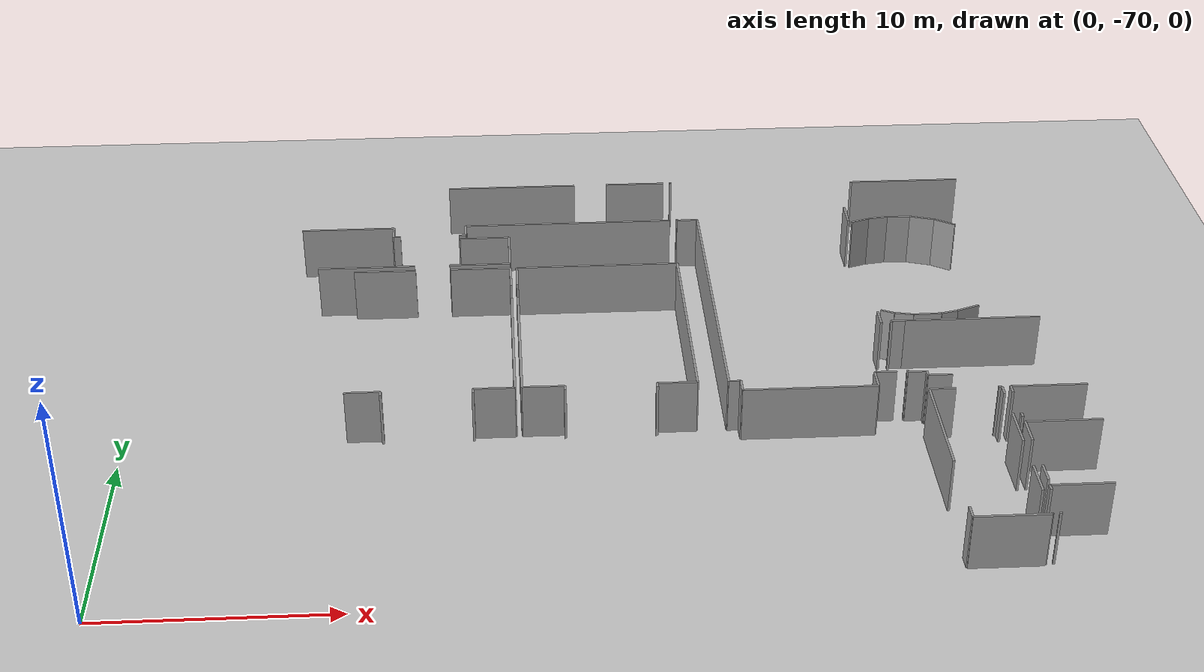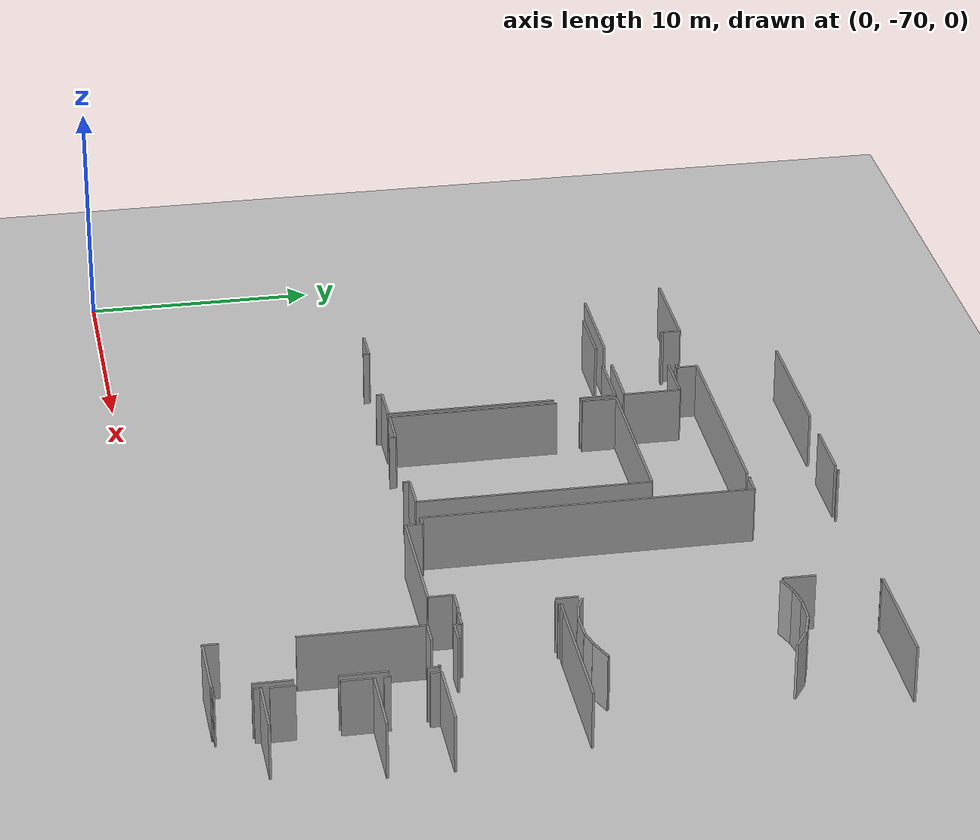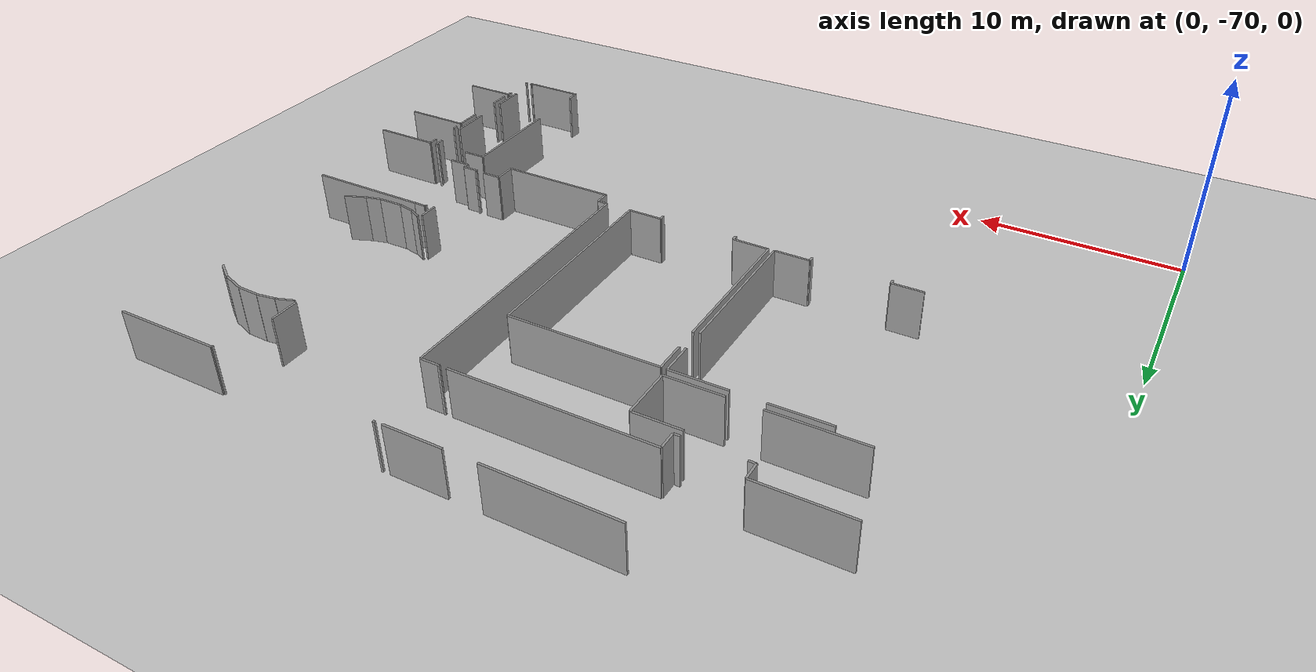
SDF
<sdf version="1.6">
 <world name="default">
  <model name="ground_plane">
   <static>1</static>
   <link name="link">
    <collision name="collision">
     <geometry><plane><normal>0 0 1</normal><size>100 100</size></plane></geometry>
     <surface><friction><ode><mu>100</mu><mu2>50</mu2></ode></friction></surface>
    </collision>
    <visual name="visual">
     <cast_shadows>0</cast_shadows>
     <geometry><plane><normal>0 0 1</normal><size>100 100</size></plane></geometry>
     <material>
      <script><uri>file://media/materials/scripts/gazebo.material</uri><name>Gazebo/Grey</name></script>
     </material>
    </visual>
   </link>
  </model>
  <model name="0510035520_A_40_1_103">
   <static>1</static>
   <link name="Wall_675">
    <collision name="Wall_675_Collision">
     <geometry><box><size>7.34893814126 0.1 2.5</size></box></geometry>
     <pose>3.67446907063 0 1.25 0 0 0</pose>
    </collision>
    <visual name="Wall_675_Visual">
     <pose>3.67446907063 0 1.25 0 0 0</pose>
     <geometry><box><size>7.34893814126 0.1 2.5</size></box></geometry>
     <material>
      <script><uri>file://media/materials/scripts/gazebo.material</uri><name>Gazebo/Grey</name></script>
      <ambient>1 1 1 1</ambient>
     </material>
    </visual>
    <pose>129.103749342 -127.203507592 0 0 0 1.57079632679</pose>
   </link>
   <link name="Wall_676">
    <collision name="Wall_676_Collision">
     <geometry><box><size>1.51826447802 0.1 2.5</size></box></geometry>
     <pose>0.759132239009 0 1.25 0 0 0</pose>
    </collision>
    <visual name="Wall_676_Visual">
     <pose>0.759132239009 0 1.25 0 0 0</pose>
     <geometry><box><size>1.51826447802 0.1 2.5</size></box></geometry>
     <material>
      <script><uri>file://media/materials/scripts/gazebo.material</uri><name>Gazebo/Grey</name></script>
      <ambient>1 1 1 1</ambient>
     </material>
    </visual>
    <pose>129.103749342 -118.729449686 0 0 0 1.57079632679</pose>
   </link>
   <link name="Wall_677">
    <collision name="Wall_677_Collision">
     <geometry><box><size>7.40959765484 0.1 2.5</size></box></geometry>
     <pose>3.70479882742 0 1.25 0 0 0</pose>
    </collision>
    <visual name="Wall_677_Visual">
     <pose>3.70479882742 0 1.25 0 0 0</pose>
     <geometry><box><size>7.40959765484 0.1 2.5</size></box></geometry>
     <material>
      <script><uri>file://media/materials/scripts/gazebo.material</uri><name>Gazebo/Grey</name></script>
      <ambient>1 1 1 1</ambient>
     </material>
    </visual>
    <pose>129.103749342 -117.211185208 0 0 0 0.0</pose>
   </link>
   <link name="Wall_678">
    <collision name="Wall_678_Collision">
     <geometry><box><size>10.008819741 0.1 2.5</size></box></geometry>
     <pose>5.0044098705 0 1.25 0 0 0</pose>
    </collision>
    <visual name="Wall_678_Visual">
     <pose>5.0044098705 0 1.25 0 0 0</pose>
     <geometry><box><size>10.008819741 0.1 2.5</size></box></geometry>
     <material>
      <script><uri>file://media/materials/scripts/gazebo.material</uri><name>Gazebo/Grey</name></script>
      <ambient>1 1 1 1</ambient>
     </material>
    </visual>
    <pose>136.513346997 -117.211185208 0 0 0 -1.57079632679</pose>
   </link>
   <link name="Wall_679">
    <collision name="Wall_679_Collision">
     <geometry><box><size>1.70963382212 0.1 2.5</size></box></geometry>
     <pose>0.85481691106 0 1.25 0 0 0</pose>
    </collision>
    <visual name="Wall_679_Visual">
     <pose>0.85481691106 0 1.25 0 0 0</pose>
     <geometry><box><size>1.70963382212 0.1 2.5</size></box></geometry>
     <material>
      <script><uri>file://media/materials/scripts/gazebo.material</uri><name>Gazebo/Grey</name></script>
      <ambient>1 1 1 1</ambient>
     </material>
    </visual>
    <pose>136.513346997 -127.220004949 0 0 0 3.14159265359</pose>
   </link>
   <link name="Wall_680">
    <collision name="Wall_680_Collision">
     <geometry><box><size>0.282231711728 0.1 2.5</size></box></geometry>
     <pose>0.141115855864 0 1.25 0 0 0</pose>
    </collision>
    <visual name="Wall_680_Visual">
     <pose>0.141115855864 0 1.25 0 0 0</pose>
     <geometry><box><size>0.282231711728 0.1 2.5</size></box></geometry>
     <material>
      <script><uri>file://media/materials/scripts/gazebo.material</uri><name>Gazebo/Grey</name></script>
      <ambient>1 1 1 1</ambient>
     </material>
    </visual>
    <pose>134.803713174 -127.220004949 0 0 0 -1.57079632679</pose>
   </link>
   <link name="Wall_681">
    <collision name="Wall_681_Collision">
     <geometry><box><size>0.284515961193 0.1 2.5</size></box></geometry>
     <pose>0.142257980597 0 1.25 0 0 0</pose>
    </collision>
    <visual name="Wall_681_Visual">
     <pose>0.142257980597 0 1.25 0 0 0</pose>
     <geometry><box><size>0.284515961193 0.1 2.5</size></box></geometry>
     <material>
      <script><uri>file://media/materials/scripts/gazebo.material</uri><name>Gazebo/Grey</name></script>
      <ambient>1 1 1 1</ambient>
     </material>
    </visual>
    <pose>130.919981472 -127.502236661 0 0 0 1.57079632679</pose>
   </link>
   <link name="Wall_682">
    <collision name="Wall_682_Collision">
     <geometry><box><size>1.81628774271 0.1 2.5</size></box></geometry>
     <pose>0.908143871355 0 1.25 0 0 0</pose>
    </collision>
    <visual name="Wall_682_Visual">
     <pose>0.908143871355 0 1.25 0 0 0</pose>
     <geometry><box><size>1.81628774271 0.1 2.5</size></box></geometry>
     <material>
      <script><uri>file://media/materials/scripts/gazebo.material</uri><name>Gazebo/Grey</name></script>
      <ambient>1 1 1 1</ambient>
     </material>
    </visual>
    <pose>130.919981472 -127.2177207 0 0 0 3.13376721244</pose>
   </link>
   <link name="Wall_684">
    <collision name="Wall_684_Collision">
     <geometry><box><size>2.8210480898 0.1 2.5</size></box></geometry>
     <pose>1.4105240449 0 1.25 0 0 0</pose>
    </collision>
    <visual name="Wall_684_Visual">
     <pose>1.4105240449 0 1.25 0 0 0</pose>
     <geometry><box><size>2.8210480898 0.1 2.5</size></box></geometry>
     <material>
      <script><uri>file://media/materials/scripts/gazebo.material</uri><name>Gazebo/Grey</name></script>
      <ambient>1 1 1 1</ambient>
     </material>
    </visual>
    <pose>121.647451476 -117.206616709 0 0 0 0.0</pose>
   </link>
   <link name="Wall_685">
    <collision name="Wall_685_Collision">
     <geometry><box><size>2.7550586608 0.1 2.5</size></box></geometry>
     <pose>1.3775293304 0 1.25 0 0 0</pose>
    </collision>
    <visual name="Wall_685_Visual">
     <pose>1.3775293304 0 1.25 0 0 0</pose>
     <geometry><box><size>2.7550586608 0.1 2.5</size></box></geometry>
     <material>
      <script><uri>file://media/materials/scripts/gazebo.material</uri><name>Gazebo/Grey</name></script>
      <ambient>1 1 1 1</ambient>
     </material>
    </visual>
    <pose>126.060113832 -117.206616709 0 0 0 0.0</pose>
   </link>
   <link name="Wall_686">
    <collision name="Wall_686_Collision">
     <geometry><box><size>1.5791777971 0.1 2.5</size></box></geometry>
     <pose>0.789588898548 0 1.25 0 0 0</pose>
    </collision>
    <visual name="Wall_686_Visual">
     <pose>0.789588898548 0 1.25 0 0 0</pose>
     <geometry><box><size>1.5791777971 0.1 2.5</size></box></geometry>
     <material>
      <script><uri>file://media/materials/scripts/gazebo.material</uri><name>Gazebo/Grey</name></script>
      <ambient>1 1 1 1</ambient>
     </material>
    </visual>
    <pose>128.815172493 -117.206616709 0 0 0 -1.57079632679</pose>
   </link>
   <link name="Wall_687">
    <collision name="Wall_687_Collision">
     <geometry><box><size>7.28421773974 0.1 2.5</size></box></geometry>
     <pose>3.64210886987 0 1.25 0 0 0</pose>
    </collision>
    <visual name="Wall_687_Visual">
     <pose>3.64210886987 0 1.25 0 0 0</pose>
     <geometry><box><size>7.28421773974 0.1 2.5</size></box></geometry>
     <material>
      <script><uri>file://media/materials/scripts/gazebo.material</uri><name>Gazebo/Grey</name></script>
      <ambient>1 1 1 1</ambient>
     </material>
    </visual>
    <pose>128.815172493 -119.935787209 0 0 0 -1.57079632679</pose>
   </link>
   <link name="Wall_688">
    <collision name="Wall_688_Collision">
     <geometry><box><size>1.76927811372 0.1 2.5</size></box></geometry>
     <pose>0.884639056859 0 1.25 0 0 0</pose>
    </collision>
    <visual name="Wall_688_Visual">
     <pose>0.884639056859 0 1.25 0 0 0</pose>
     <geometry><box><size>1.76927811372 0.1 2.5</size></box></geometry>
     <material>
      <script><uri>file://media/materials/scripts/gazebo.material</uri><name>Gazebo/Grey</name></script>
      <ambient>1 1 1 1</ambient>
     </material>
    </visual>
    <pose>128.815172493 -127.220004949 0 0 0 3.14159265359</pose>
   </link>
   <link name="Wall_689">
    <collision name="Wall_689_Collision">
     <geometry><box><size>0.265480548981 0.1 2.5</size></box></geometry>
     <pose>0.132740274491 0 1.25 0 0 0</pose>
    </collision>
    <visual name="Wall_689_Visual">
     <pose>0.132740274491 0 1.25 0 0 0</pose>
     <geometry><box><size>0.265480548981 0.1 2.5</size></box></geometry>
     <material>
      <script><uri>file://media/materials/scripts/gazebo.material</uri><name>Gazebo/Grey</name></script>
      <ambient>1 1 1 1</ambient>
     </material>
    </visual>
    <pose>127.045894379 -127.220004949 0 0 0 -1.57079632679</pose>
   </link>
   <link name="Wall_690">
    <collision name="Wall_690_Collision">
     <geometry><box><size>0.257104967608 0.1 2.5</size></box></geometry>
     <pose>0.128552483804 0 1.25 0 0 0</pose>
    </collision>
    <visual name="Wall_690_Visual">
     <pose>0.128552483804 0 1.25 0 0 0</pose>
     <geometry><box><size>0.257104967608 0.1 2.5</size></box></geometry>
     <material>
      <script><uri>file://media/materials/scripts/gazebo.material</uri><name>Gazebo/Grey</name></script>
      <ambient>1 1 1 1</ambient>
     </material>
    </visual>
    <pose>123.187797032 -127.485485498 0 0 0 1.57079632679</pose>
   </link>
   <link name="Wall_691">
    <collision name="Wall_691_Collision">
     <geometry><box><size>1.54036079949 0.1 2.5</size></box></geometry>
     <pose>0.770180399746 0 1.25 0 0 0</pose>
    </collision>
    <visual name="Wall_691_Visual">
     <pose>0.770180399746 0 1.25 0 0 0</pose>
     <geometry><box><size>1.54036079949 0.1 2.5</size></box></geometry>
     <material>
      <script><uri>file://media/materials/scripts/gazebo.material</uri><name>Gazebo/Grey</name></script>
      <ambient>1 1 1 1</ambient>
     </material>
    </visual>
    <pose>123.187797032 -127.228380531 0 0 0 -3.13714384458</pose>
   </link>
   <link name="Wall_701">
    <collision name="Wall_701_Collision">
     <geometry><box><size>2.29820876771 0.1 2.5</size></box></geometry>
     <pose>1.14910438386 0 1.25 0 0 0</pose>
    </collision>
    <visual name="Wall_701_Visual">
     <pose>1.14910438386 0 1.25 0 0 0</pose>
     <geometry><box><size>2.29820876771 0.1 2.5</size></box></geometry>
     <material>
      <script><uri>file://media/materials/scripts/gazebo.material</uri><name>Gazebo/Grey</name></script>
      <ambient>1 1 1 1</ambient>
     </material>
    </visual>
    <pose>126.498435924 -114.326685744 0 0 0 0.0</pose>
   </link>
   <link name="Wall_702">
    <collision name="Wall_702_Collision">
     <geometry><box><size>2.47612642052 0.1 2.5</size></box></geometry>
     <pose>1.23806321026 0 1.25 0 0 0</pose>
    </collision>
    <visual name="Wall_702_Visual">
     <pose>1.23806321026 0 1.25 0 0 0</pose>
     <geometry><box><size>2.47612642052 0.1 2.5</size></box></geometry>
     <material>
      <script><uri>file://media/materials/scripts/gazebo.material</uri><name>Gazebo/Grey</name></script>
      <ambient>1 1 1 1</ambient>
     </material>
    </visual>
    <pose>128.796644691 -114.326685744 0 0 0 -1.57079632679</pose>
   </link>
   <link name="Wall_703">
    <collision name="Wall_703_Collision">
     <geometry><box><size>2.77688593346 0.1 2.5</size></box></geometry>
     <pose>1.38844296673 0 1.25 0 0 0</pose>
    </collision>
    <visual name="Wall_703_Visual">
     <pose>1.38844296673 0 1.25 0 0 0</pose>
     <geometry><box><size>2.77688593346 0.1 2.5</size></box></geometry>
     <material>
      <script><uri>file://media/materials/scripts/gazebo.material</uri><name>Gazebo/Grey</name></script>
      <ambient>1 1 1 1</ambient>
     </material>
    </visual>
    <pose>128.796644691 -116.802812165 0 0 0 3.14159265359</pose>
   </link>
   <link name="Wall_704">
    <collision name="Wall_704_Collision">
     <geometry><box><size>4.44007334979 0.1 2.5</size></box></geometry>
     <pose>2.22003667489 0 1.25 0 0 0</pose>
    </collision>
    <visual name="Wall_704_Visual">
     <pose>2.22003667489 0 1.25 0 0 0</pose>
     <geometry><box><size>4.44007334979 0.1 2.5</size></box></geometry>
     <material>
      <script><uri>file://media/materials/scripts/gazebo.material</uri><name>Gazebo/Grey</name></script>
      <ambient>1 1 1 1</ambient>
     </material>
    </visual>
    <pose>124.425352631 -116.802812165 0 0 0 3.14159265359</pose>
   </link>
   <link name="Wall_806">
    <collision name="Wall_806_Collision">
     <geometry><box><size>6.14894575542 0.1 2.5</size></box></geometry>
     <pose>3.07447287771 0 1.25 0 0 0</pose>
    </collision>
    <visual name="Wall_806_Visual">
     <pose>3.07447287771 0 1.25 0 0 0</pose>
     <geometry><box><size>6.14894575542 0.1 2.5</size></box></geometry>
     <material>
      <script><uri>file://media/materials/scripts/gazebo.material</uri><name>Gazebo/Grey</name></script>
      <ambient>1 1 1 1</ambient>
     </material>
    </visual>
    <pose>125.951231274 -109.299814087 0 0 0 0.0</pose>
   </link>
   <link name="Wall_807">
    <collision name="Wall_807_Collision">
     <geometry><box><size>2.82206331178 0.1 2.5</size></box></geometry>
     <pose>1.41103165589 0 1.25 0 0 0</pose>
    </collision>
    <visual name="Wall_807_Visual">
     <pose>1.41103165589 0 1.25 0 0 0</pose>
     <geometry><box><size>2.82206331178 0.1 2.5</size></box></geometry>
     <material>
      <script><uri>file://media/materials/scripts/gazebo.material</uri><name>Gazebo/Grey</name></script>
      <ambient>1 1 1 1</ambient>
     </material>
    </visual>
    <pose>133.681639076 -109.299814087 0 0 0 0.0</pose>
   </link>
   <link name="Wall_808">
    <collision name="Wall_808_Collision">
     <geometry><box><size>9.74816149644 0.1 2.5</size></box></geometry>
     <pose>4.87408074822 0 1.25 0 0 0</pose>
    </collision>
    <visual name="Wall_808_Visual">
     <pose>4.87408074822 0 1.25 0 0 0</pose>
     <geometry><box><size>9.74816149644 0.1 2.5</size></box></geometry>
     <material>
      <script><uri>file://media/materials/scripts/gazebo.material</uri><name>Gazebo/Grey</name></script>
      <ambient>1 1 1 1</ambient>
     </material>
    </visual>
    <pose>136.503702388 -113.113495473 0 0 0 3.14159265359</pose>
   </link>
   <link name="Wall_809">
    <collision name="Wall_809_Collision">
     <geometry><box><size>0.881212682661 0.1 2.5</size></box></geometry>
     <pose>0.44060634133 0 1.25 0 0 0</pose>
    </collision>
    <visual name="Wall_809_Visual">
     <pose>0.44060634133 0 1.25 0 0 0</pose>
     <geometry><box><size>0.881212682661 0.1 2.5</size></box></geometry>
     <material>
      <script><uri>file://media/materials/scripts/gazebo.material</uri><name>Gazebo/Grey</name></script>
      <ambient>1 1 1 1</ambient>
     </material>
    </visual>
    <pose>126.755540891 -113.113495473 0 0 0 -1.57079632679</pose>
   </link>
   <link name="Wall_810">
    <collision name="Wall_810_Collision">
     <geometry><box><size>0.315226426228 0.1 2.5</size></box></geometry>
     <pose>0.157613213114 0 1.25 0 0 0</pose>
    </collision>
    <visual name="Wall_810_Visual">
     <pose>0.157613213114 0 1.25 0 0 0</pose>
     <geometry><box><size>0.315226426228 0.1 2.5</size></box></geometry>
     <material>
      <script><uri>file://media/materials/scripts/gazebo.material</uri><name>Gazebo/Grey</name></script>
      <ambient>1 1 1 1</ambient>
     </material>
    </visual>
    <pose>126.755540891 -113.994708155 0 0 0 3.14159265359</pose>
   </link>
   <link name="Wall_811">
    <collision name="Wall_811_Collision">
     <geometry><box><size>0.339084142867 0.1 2.5</size></box></geometry>
     <pose>0.169542071434 0 1.25 0 0 0</pose>
    </collision>
    <visual name="Wall_811_Visual">
     <pose>0.169542071434 0 1.25 0 0 0</pose>
     <geometry><box><size>0.339084142867 0.1 2.5</size></box></geometry>
     <material>
      <script><uri>file://media/materials/scripts/gazebo.material</uri><name>Gazebo/Grey</name></script>
      <ambient>1 1 1 1</ambient>
     </material>
    </visual>
    <pose>123.696677052 -113.994708155 0 0 0 3.14159265359</pose>
   </link>
   <link name="Wall_812">
    <collision name="Wall_812_Collision">
     <geometry><box><size>0.849740801137 0.1 2.5</size></box></geometry>
     <pose>0.424870400569 0 1.25 0 0 0</pose>
    </collision>
    <visual name="Wall_812_Visual">
     <pose>0.424870400569 0 1.25 0 0 0</pose>
     <geometry><box><size>0.849740801137 0.1 2.5</size></box></geometry>
     <material>
      <script><uri>file://media/materials/scripts/gazebo.material</uri><name>Gazebo/Grey</name></script>
      <ambient>1 1 1 1</ambient>
     </material>
    </visual>
    <pose>123.357592909 -113.994708155 0 0 0 1.57079632679</pose>
   </link>
   <link name="Wall_813">
    <collision name="Wall_813_Collision">
     <geometry><box><size>4.31824671163 0.1 2.5</size></box></geometry>
     <pose>2.15912335582 0 1.25 0 0 0</pose>
    </collision>
    <visual name="Wall_813_Visual">
     <pose>2.15912335582 0 1.25 0 0 0</pose>
     <geometry><box><size>4.31824671163 0.1 2.5</size></box></geometry>
     <material>
      <script><uri>file://media/materials/scripts/gazebo.material</uri><name>Gazebo/Grey</name></script>
      <ambient>1 1 1 1</ambient>
     </material>
    </visual>
    <pose>123.357592909 -113.144967354 0 0 0 3.14159265359</pose>
   </link>
   <link name="Wall_874">
    <collision name="Wall_874_Collision">
     <geometry><box><size>14.1133622249 0.1 2.5</size></box></geometry>
     <pose>7.05668111243 0 1.25 0 0 0</pose>
    </collision>
    <visual name="Wall_874_Visual">
     <pose>7.05668111243 0 1.25 0 0 0</pose>
     <geometry><box><size>14.1133622249 0.1 2.5</size></box></geometry>
     <material>
      <script><uri>file://media/materials/scripts/gazebo.material</uri><name>Gazebo/Grey</name></script>
      <ambient>1 1 1 1</ambient>
     </material>
    </visual>
    <pose>137.82729805 -127.236502306 0 0 0 1.57079632679</pose>
   </link>
   <link name="Wall_875">
    <collision name="Wall_875_Collision">
     <geometry><box><size>0.965476107385 0.1 2.5</size></box></geometry>
     <pose>0.482738053693 0 1.25 0 0 0</pose>
    </collision>
    <visual name="Wall_875_Visual">
     <pose>0.482738053693 0 1.25 0 0 0</pose>
     <geometry><box><size>0.965476107385 0.1 2.5</size></box></geometry>
     <material>
      <script><uri>file://media/materials/scripts/gazebo.material</uri><name>Gazebo/Grey</name></script>
      <ambient>1 1 1 1</ambient>
     </material>
    </visual>
    <pose>137.82729805 -113.123140082 0 0 0 3.14159265359</pose>
   </link>
   <link name="Wall_876">
    <collision name="Wall_876_Collision">
     <geometry><box><size>0.0812177587705 0.1 2.5</size></box></geometry>
     <pose>0.0406088793853 0 1.25 0 0 0</pose>
    </collision>
    <visual name="Wall_876_Visual">
     <pose>0.0406088793853 0 1.25 0 0 0</pose>
     <geometry><box><size>0.0812177587705 0.1 2.5</size></box></geometry>
     <material>
      <script><uri>file://media/materials/scripts/gazebo.material</uri><name>Gazebo/Grey</name></script>
      <ambient>1 1 1 1</ambient>
     </material>
    </visual>
    <pose>136.861821943 -113.123140082 0 0 0 1.57079632679</pose>
   </link>
   <link name="Wall_877">
    <collision name="Wall_877_Collision">
     <geometry><box><size>0.0949232555631 0.1 2.5</size></box></geometry>
     <pose>0.0474616277815 0 1.25 0 0 0</pose>
    </collision>
    <visual name="Wall_877_Visual">
     <pose>0.0474616277815 0 1.25 0 0 0</pose>
     <geometry><box><size>0.0949232555631 0.1 2.5</size></box></geometry>
     <material>
      <script><uri>file://media/materials/scripts/gazebo.material</uri><name>Gazebo/Grey</name></script>
      <ambient>1 1 1 1</ambient>
     </material>
    </visual>
    <pose>136.861821943 -109.326463665 0 0 0 1.57079632679</pose>
   </link>
   <link name="Wall_880">
    <collision name="Wall_880_Collision">
     <geometry><box><size>1.38298614857 0.1 2.5</size></box></geometry>
     <pose>0.691493074283 0 1.25 0 0 0</pose>
    </collision>
    <visual name="Wall_880_Visual">
     <pose>0.691493074283 0 1.25 0 0 0</pose>
     <geometry><box><size>1.38298614857 0.1 2.5</size></box></geometry>
     <material>
      <script><uri>file://media/materials/scripts/gazebo.material</uri><name>Gazebo/Grey</name></script>
      <ambient>1 1 1 1</ambient>
     </material>
    </visual>
    <pose>145.042226889 -112.28862761 0 0 0 -1.57079632679</pose>
   </link>
   <link name="Wall_881">
    <collision name="Wall_881_Collision">
     <geometry><box><size>0.954054860058 0.1 2.5</size></box></geometry>
     <pose>0.477027430029 0 1.25 0 0 0</pose>
    </collision>
    <visual name="Wall_881_Visual">
     <pose>0.477027430029 0 1.25 0 0 0</pose>
     <geometry><box><size>0.954054860058 0.1 2.5</size></box></geometry>
     <material>
      <script><uri>file://media/materials/scripts/gazebo.material</uri><name>Gazebo/Grey</name></script>
      <ambient>1 1 1 1</ambient>
     </material>
    </visual>
    <pose>145.042226889 -122.01013953 0 0 0 -1.57079632679</pose>
   </link>
   <link name="Wall_882">
    <collision name="Wall_882_Collision">
     <geometry><box><size>0.958369553493 0.1 2.5</size></box></geometry>
     <pose>0.479184776746 0 1.25 0 0 0</pose>
    </collision>
    <visual name="Wall_882_Visual">
     <pose>0.479184776746 0 1.25 0 0 0</pose>
     <geometry><box><size>0.958369553493 0.1 2.5</size></box></geometry>
     <material>
      <script><uri>file://media/materials/scripts/gazebo.material</uri><name>Gazebo/Grey</name></script>
      <ambient>1 1 1 1</ambient>
     </material>
    </visual>
    <pose>145.042226889 -126.900971441 0 0 0 3.14159265359</pose>
   </link>
   <link name="Wall_883">
    <collision name="Wall_883_Collision">
     <geometry><box><size>1.04973953211 0.1 2.5</size></box></geometry>
     <pose>0.524869766055 0 1.25 0 0 0</pose>
    </collision>
    <visual name="Wall_883_Visual">
     <pose>0.524869766055 0 1.25 0 0 0</pose>
     <geometry><box><size>1.04973953211 0.1 2.5</size></box></geometry>
     <material>
      <script><uri>file://media/materials/scripts/gazebo.material</uri><name>Gazebo/Grey</name></script>
      <ambient>1 1 1 1</ambient>
     </material>
    </visual>
    <pose>144.083857336 -126.900971441 0 0 0 -1.57079632679</pose>
   </link>
   <link name="Wall_884">
    <collision name="Wall_884_Collision">
     <geometry><box><size>5.74564882203 0.1 2.5</size></box></geometry>
     <pose>2.87282441101 0 1.25 0 0 0</pose>
    </collision>
    <visual name="Wall_884_Visual">
     <pose>2.87282441101 0 1.25 0 0 0</pose>
     <geometry><box><size>5.74564882203 0.1 2.5</size></box></geometry>
     <material>
      <script><uri>file://media/materials/scripts/gazebo.material</uri><name>Gazebo/Grey</name></script>
      <ambient>1 1 1 1</ambient>
     </material>
    </visual>
    <pose>144.083857336 -127.950710973 0 0 0 3.14159265359</pose>
   </link>
   <link name="Wall_885">
    <collision name="Wall_885_Collision">
     <geometry><box><size>0.700756974892 0.1 2.5</size></box></geometry>
     <pose>0.350378487446 0 1.25 0 0 0</pose>
    </collision>
    <visual name="Wall_885_Visual">
     <pose>0.350378487446 0 1.25 0 0 0</pose>
     <geometry><box><size>0.700756974892 0.1 2.5</size></box></geometry>
     <material>
      <script><uri>file://media/materials/scripts/gazebo.material</uri><name>Gazebo/Grey</name></script>
      <ambient>1 1 1 1</ambient>
     </material>
    </visual>
    <pose>138.338208514 -127.950710973 0 0 0 1.57079632679</pose>
   </link>
   <link name="Wall_886">
    <collision name="Wall_886_Collision">
     <geometry><box><size>0.511087516952 0.1 2.5</size></box></geometry>
     <pose>0.255543758476 0 1.25 0 0 0</pose>
    </collision>
    <visual name="Wall_886_Visual">
     <pose>0.255543758476 0 1.25 0 0 0</pose>
     <geometry><box><size>0.511087516952 0.1 2.5</size></box></geometry>
     <material>
      <script><uri>file://media/materials/scripts/gazebo.material</uri><name>Gazebo/Grey</name></script>
      <ambient>1 1 1 1</ambient>
     </material>
    </visual>
    <pose>138.338208514 -127.249953998 0 0 0 3.11526987247</pose>
   </link>
   <link name="Wall_887">
    <collision name="Wall_887_Collision">
     <geometry><box><size>5.24641341108 0.1 2.5</size></box></geometry>
     <pose>2.62320670554 0 1.25 0 0 0</pose>
    </collision>
    <visual name="Wall_887_Visual">
     <pose>2.62320670554 0 1.25 0 0 0</pose>
     <geometry><box><size>5.24641341108 0.1 2.5</size></box></geometry>
     <material>
      <script><uri>file://media/materials/scripts/gazebo.material</uri><name>Gazebo/Grey</name></script>
      <ambient>1 1 1 1</ambient>
     </material>
    </visual>
    <pose>145.786892215 -109.6975273 0 0 0 0.0</pose>
   </link>
   <link name="Wall_890">
    <collision name="Wall_890_Collision">
     <geometry><box><size>0.0933469563973 0.1 2.5</size></box></geometry>
     <pose>0.0466734781986 0 1.25 0 0 0</pose>
    </collision>
    <visual name="Wall_890_Visual">
     <pose>0.0466734781986 0 1.25 0 0 0</pose>
     <geometry><box><size>0.0933469563973 0.1 2.5</size></box></geometry>
     <material>
      <script><uri>file://media/materials/scripts/gazebo.material</uri><name>Gazebo/Grey</name></script>
      <ambient>1 1 1 1</ambient>
     </material>
    </visual>
    <pose>145.770394858 -109.78940489 0 0 0 1.39313153946</pose>
   </link>
   <link name="Wall_891">
    <collision name="Wall_891_Collision">
     <geometry><box><size>0.940087472138 0.1 2.5</size></box></geometry>
     <pose>0.470043736069 0 1.25 0 0 0</pose>
    </collision>
    <visual name="Wall_891_Visual">
     <pose>0.470043736069 0 1.25 0 0 0</pose>
     <geometry><box><size>0.940087472138 0.1 2.5</size></box></geometry>
     <material>
      <script><uri>file://media/materials/scripts/gazebo.material</uri><name>Gazebo/Grey</name></script>
      <ambient>1 1 1 1</ambient>
     </material>
    </visual>
    <pose>146.037652045 -113.472122639 0 0 0 0.150678806704</pose>
   </link>
   <link name="Wall_892">
    <collision name="Wall_892_Collision">
     <geometry><box><size>1.08730360459 0.1 2.5</size></box></geometry>
     <pose>0.543651802296 0 1.25 0 0 0</pose>
    </collision>
    <visual name="Wall_892_Visual">
     <pose>0.543651802296 0 1.25 0 0 0</pose>
     <geometry><box><size>1.08730360459 0.1 2.5</size></box></geometry>
     <material>
      <script><uri>file://media/materials/scripts/gazebo.material</uri><name>Gazebo/Grey</name></script>
      <ambient>1 1 1 1</ambient>
     </material>
    </visual>
    <pose>146.967087772 -113.331006783 0 0 0 -0.0305836416248</pose>
   </link>
   <link name="Wall_893">
    <collision name="Wall_893_Collision">
     <geometry><box><size>1.1769374645 0.1 2.5</size></box></geometry>
     <pose>0.588468732252 0 1.25 0 0 0</pose>
    </collision>
    <visual name="Wall_893_Visual">
     <pose>0.588468732252 0 1.25 0 0 0</pose>
     <geometry><box><size>1.1769374645 0.1 2.5</size></box></geometry>
     <material>
      <script><uri>file://media/materials/scripts/gazebo.material</uri><name>Gazebo/Grey</name></script>
      <ambient>1 1 1 1</ambient>
     </material>
    </visual>
    <pose>148.053882907 -113.364255303 0 0 0 -0.31008907663</pose>
   </link>
   <link name="Wall_894">
    <collision name="Wall_894_Collision">
     <geometry><box><size>1.06067773488 0.1 2.5</size></box></geometry>
     <pose>0.53033886744 0 1.25 0 0 0</pose>
    </collision>
    <visual name="Wall_894_Visual">
     <pose>0.53033886744 0 1.25 0 0 0</pose>
     <geometry><box><size>1.06067773488 0.1 2.5</size></box></geometry>
     <material>
      <script><uri>file://media/materials/scripts/gazebo.material</uri><name>Gazebo/Grey</name></script>
      <ambient>1 1 1 1</ambient>
     </material>
    </visual>
    <pose>149.174687978 -113.72339008 0 0 0 -0.576786507897</pose>
   </link>
   <link name="Wall_904">
    <collision name="Wall_904_Collision">
     <geometry><box><size>1.11414464075 0.1 2.5</size></box></geometry>
     <pose>0.557072320377 0 1.25 0 0 0</pose>
    </collision>
    <visual name="Wall_904_Visual">
     <pose>0.557072320377 0 1.25 0 0 0</pose>
     <geometry><box><size>1.11414464075 0.1 2.5</size></box></geometry>
     <material>
      <script><uri>file://media/materials/scripts/gazebo.material</uri><name>Gazebo/Grey</name></script>
      <ambient>1 1 1 1</ambient>
     </material>
    </visual>
    <pose>149.638644425 -121.71090285 0 0 0 -2.76802385289</pose>
   </link>
   <link name="Wall_905">
    <collision name="Wall_905_Collision">
     <geometry><box><size>0.77857416363 0.1 2.5</size></box></geometry>
     <pose>0.389287081815 0 1.25 0 0 0</pose>
    </collision>
    <visual name="Wall_905_Visual">
     <pose>0.389287081815 0 1.25 0 0 0</pose>
     <geometry><box><size>0.77857416363 0.1 2.5</size></box></geometry>
     <material>
      <script><uri>file://media/materials/scripts/gazebo.material</uri><name>Gazebo/Grey</name></script>
      <ambient>1 1 1 1</ambient>
     </material>
    </visual>
    <pose>148.601341362 -122.117499254 0 0 0 -2.8939258249</pose>
   </link>
   <link name="Wall_906">
    <collision name="Wall_906_Collision">
     <geometry><box><size>1.24866448907 0.1 2.5</size></box></geometry>
     <pose>0.624332244533 0 1.25 0 0 0</pose>
    </collision>
    <visual name="Wall_906_Visual">
     <pose>0.624332244533 0 1.25 0 0 0</pose>
     <geometry><box><size>1.24866448907 0.1 2.5</size></box></geometry>
     <material>
      <script><uri>file://media/materials/scripts/gazebo.material</uri><name>Gazebo/Grey</name></script>
      <ambient>1 1 1 1</ambient>
     </material>
    </visual>
    <pose>147.846523816 -122.308360988 0 0 0 -3.12390797578</pose>
   </link>
   <link name="Wall_907">
    <collision name="Wall_907_Collision">
     <geometry><box><size>0.839077016574 0.1 2.5</size></box></geometry>
     <pose>0.419538508287 0 1.25 0 0 0</pose>
    </collision>
    <visual name="Wall_907_Visual">
     <pose>0.419538508287 0 1.25 0 0 0</pose>
     <geometry><box><size>0.839077016574 0.1 2.5</size></box></geometry>
     <material>
      <script><uri>file://media/materials/scripts/gazebo.material</uri><name>Gazebo/Grey</name></script>
      <ambient>1 1 1 1</ambient>
     </material>
    </visual>
    <pose>146.598054581 -122.330442066 0 0 0 2.9384428712</pose>
   </link>
   <link name="Wall_908">
    <collision name="Wall_908_Collision">
     <geometry><box><size>0.640366909404 0.1 2.5</size></box></geometry>
     <pose>0.320183454702 0 1.25 0 0 0</pose>
    </collision>
    <visual name="Wall_908_Visual">
     <pose>0.320183454702 0 1.25 0 0 0</pose>
     <geometry><box><size>0.640366909404 0.1 2.5</size></box></geometry>
     <material>
      <script><uri>file://media/materials/scripts/gazebo.material</uri><name>Gazebo/Grey</name></script>
      <ambient>1 1 1 1</ambient>
     </material>
    </visual>
    <pose>145.776232384 -122.1611538 0 0 0 2.70276264321</pose>
   </link>
   <link name="Wall_909">
    <collision name="Wall_909_Collision">
     <geometry><box><size>0.889816587267 0.1 2.5</size></box></geometry>
     <pose>0.444908293634 0 1.25 0 0 0</pose>
    </collision>
    <visual name="Wall_909_Visual">
     <pose>0.444908293634 0 1.25 0 0 0</pose>
     <geometry><box><size>0.889816587267 0.1 2.5</size></box></geometry>
     <material>
      <script><uri>file://media/materials/scripts/gazebo.material</uri><name>Gazebo/Grey</name></script>
      <ambient>1 1 1 1</ambient>
     </material>
    </visual>
    <pose>145.196540631 -113.762476126 0 0 0 0.332394208014</pose>
   </link>
   <link name="Wall_910">
    <collision name="Wall_910_Collision">
     <geometry><box><size>1.12816543042 0.1 2.5</size></box></geometry>
     <pose>0.564082715211 0 1.25 0 0 0</pose>
    </collision>
    <visual name="Wall_910_Visual">
     <pose>0.564082715211 0 1.25 0 0 0</pose>
     <geometry><box><size>1.12816543042 0.1 2.5</size></box></geometry>
     <material>
      <script><uri>file://media/materials/scripts/gazebo.material</uri><name>Gazebo/Grey</name></script>
      <ambient>1 1 1 1</ambient>
     </material>
    </visual>
    <pose>146.162270544 -128.315175665 0 0 0 0.0</pose>
   </link>
   <link name="Wall_911">
    <collision name="Wall_911_Collision">
     <geometry><box><size>0.146953382275 0.1 2.5</size></box></geometry>
     <pose>0.0734766911377 0 1.25 0 0 0</pose>
    </collision>
    <visual name="Wall_911_Visual">
     <pose>0.0734766911377 0 1.25 0 0 0</pose>
     <geometry><box><size>0.146953382275 0.1 2.5</size></box></geometry>
     <material>
      <script><uri>file://media/materials/scripts/gazebo.material</uri><name>Gazebo/Grey</name></script>
      <ambient>1 1 1 1</ambient>
     </material>
    </visual>
    <pose>149.091439775 -128.315175665 0 0 0 0.0</pose>
   </link>
   <link name="Wall_912">
    <collision name="Wall_912_Collision">
     <geometry><box><size>0.499743021935 0.1 2.5</size></box></geometry>
     <pose>0.249871510968 0 1.25 0 0 0</pose>
    </collision>
    <visual name="Wall_912_Visual">
     <pose>0.249871510968 0 1.25 0 0 0</pose>
     <geometry><box><size>0.499743021935 0.1 2.5</size></box></geometry>
     <material>
      <script><uri>file://media/materials/scripts/gazebo.material</uri><name>Gazebo/Grey</name></script>
      <ambient>1 1 1 1</ambient>
     </material>
    </visual>
    <pose>149.238393157 -128.315175665 0 0 0 -1.57079632679</pose>
   </link>
   <link name="Wall_913">
    <collision name="Wall_913_Collision">
     <geometry><box><size>1.97612959309 0.1 2.5</size></box></geometry>
     <pose>0.988064796543 0 1.25 0 0 0</pose>
    </collision>
    <visual name="Wall_913_Visual">
     <pose>0.988064796543 0 1.25 0 0 0</pose>
     <geometry><box><size>1.97612959309 0.1 2.5</size></box></geometry>
     <material>
      <script><uri>file://media/materials/scripts/gazebo.material</uri><name>Gazebo/Grey</name></script>
      <ambient>1 1 1 1</ambient>
     </material>
    </visual>
    <pose>149.238393157 -130.306279782 0 0 0 -1.57079632679</pose>
   </link>
   <link name="Wall_914">
    <collision name="Wall_914_Collision">
     <geometry><box><size>1.64034492167 0.1 2.5</size></box></geometry>
     <pose>0.820172460835 0 1.25 0 0 0</pose>
    </collision>
    <visual name="Wall_914_Visual">
     <pose>0.820172460835 0 1.25 0 0 0</pose>
     <geometry><box><size>1.64034492167 0.1 2.5</size></box></geometry>
     <material>
      <script><uri>file://media/materials/scripts/gazebo.material</uri><name>Gazebo/Grey</name></script>
      <ambient>1 1 1 1</ambient>
     </material>
    </visual>
    <pose>149.238393157 -134.010570999 0 0 0 -1.57079632679</pose>
   </link>
   <link name="Wall_915">
    <collision name="Wall_915_Collision">
     <geometry><box><size>0.0753802323589 0.1 2.5</size></box></geometry>
     <pose>0.0376901161795 0 1.25 0 0 0</pose>
    </collision>
    <visual name="Wall_915_Visual">
     <pose>0.0376901161795 0 1.25 0 0 0</pose>
     <geometry><box><size>0.0753802323589 0.1 2.5</size></box></geometry>
     <material>
      <script><uri>file://media/materials/scripts/gazebo.material</uri><name>Gazebo/Grey</name></script>
      <ambient>1 1 1 1</ambient>
     </material>
    </visual>
    <pose>149.238393157 -137.130094352 0 0 0 -1.57079632679</pose>
   </link>
   <link name="Wall_916">
    <collision name="Wall_916_Collision">
     <geometry><box><size>3.08602102779 0.1 2.5</size></box></geometry>
     <pose>1.54301051389 0 1.25 0 0 0</pose>
    </collision>
    <visual name="Wall_916_Visual">
     <pose>1.54301051389 0 1.25 0 0 0</pose>
     <geometry><box><size>3.08602102779 0.1 2.5</size></box></geometry>
     <material>
      <script><uri>file://media/materials/scripts/gazebo.material</uri><name>Gazebo/Grey</name></script>
      <ambient>1 1 1 1</ambient>
     </material>
    </visual>
    <pose>149.238393157 -137.205474585 0 0 0 3.14159265359</pose>
   </link>
   <link name="Wall_917">
    <collision name="Wall_917_Collision">
     <geometry><box><size>0.634767545891 0.1 2.5</size></box></geometry>
     <pose>0.317383772946 0 1.25 0 0 0</pose>
    </collision>
    <visual name="Wall_917_Visual">
     <pose>0.317383772946 0 1.25 0 0 0</pose>
     <geometry><box><size>0.634767545891 0.1 2.5</size></box></geometry>
     <material>
      <script><uri>file://media/materials/scripts/gazebo.material</uri><name>Gazebo/Grey</name></script>
      <ambient>1 1 1 1</ambient>
     </material>
    </visual>
    <pose>146.15237213 -137.205474585 0 0 0 1.57079632679</pose>
   </link>
   <link name="Wall_918">
    <collision name="Wall_918_Collision">
     <geometry><box><size>5.21241287319 0.1 2.5</size></box></geometry>
     <pose>2.6062064366 0 1.25 0 0 0</pose>
    </collision>
    <visual name="Wall_918_Visual">
     <pose>2.6062064366 0 1.25 0 0 0</pose>
     <geometry><box><size>5.21241287319 0.1 2.5</size></box></geometry>
     <material>
      <script><uri>file://media/materials/scripts/gazebo.material</uri><name>Gazebo/Grey</name></script>
      <ambient>1 1 1 1</ambient>
     </material>
    </visual>
    <pose>146.15237213 -133.52757914 0 0 0 1.56889731754</pose>
   </link>
   <link name="Wall_919">
    <collision name="Wall_919_Collision">
     <geometry><box><size>3.27079142899 0.1 2.5</size></box></geometry>
     <pose>1.63539571449 0 1.25 0 0 0</pose>
    </collision>
    <visual name="Wall_919_Visual">
     <pose>1.63539571449 0 1.25 0 0 0</pose>
     <geometry><box><size>3.27079142899 0.1 2.5</size></box></geometry>
     <material>
      <script><uri>file://media/materials/scripts/gazebo.material</uri><name>Gazebo/Grey</name></script>
      <ambient>1 1 1 1</ambient>
     </material>
    </visual>
    <pose>149.609456793 -128.302993001 0 0 0 0.0</pose>
   </link>
   <link name="Wall_922">
    <collision name="Wall_922_Collision">
     <geometry><box><size>0.275632768828 0.1 2.5</size></box></geometry>
     <pose>0.137816384414 0 1.25 0 0 0</pose>
    </collision>
    <visual name="Wall_922_Visual">
     <pose>0.137816384414 0 1.25 0 0 0</pose>
     <geometry><box><size>0.275632768828 0.1 2.5</size></box></geometry>
     <material>
      <script><uri>file://media/materials/scripts/gazebo.material</uri><name>Gazebo/Grey</name></script>
      <ambient>1 1 1 1</ambient>
     </material>
    </visual>
    <pose>149.609456793 -130.561100501 0 0 0 1.57079632679</pose>
   </link>
   <link name="Wall_923">
    <collision name="Wall_923_Collision">
     <geometry><box><size>0.454565643619 0.1 2.5</size></box></geometry>
     <pose>0.227282821809 0 1.25 0 0 0</pose>
    </collision>
    <visual name="Wall_923_Visual">
     <pose>0.227282821809 0 1.25 0 0 0</pose>
     <geometry><box><size>0.454565643619 0.1 2.5</size></box></geometry>
     <material>
      <script><uri>file://media/materials/scripts/gazebo.material</uri><name>Gazebo/Grey</name></script>
      <ambient>1 1 1 1</ambient>
     </material>
    </visual>
    <pose>149.609456793 -128.757558645 0 0 0 1.57079632679</pose>
   </link>
   <link name="Wall_924">
    <collision name="Wall_924_Collision">
     <geometry><box><size>3.24490326838 0.1 2.5</size></box></geometry>
     <pose>1.62245163419 0 1.25 0 0 0</pose>
    </collision>
    <visual name="Wall_924_Visual">
     <pose>1.62245163419 0 1.25 0 0 0</pose>
     <geometry><box><size>3.24490326838 0.1 2.5</size></box></geometry>
     <material>
      <script><uri>file://media/materials/scripts/gazebo.material</uri><name>Gazebo/Grey</name></script>
      <ambient>1 1 1 1</ambient>
     </material>
    </visual>
    <pose>149.617832374 -130.929372276 0 0 0 0.0</pose>
   </link>
   <link name="Wall_927">
    <collision name="Wall_927_Collision">
     <geometry><box><size>1.00659259776 0.1 2.5</size></box></geometry>
     <pose>0.503296298881 0 1.25 0 0 0</pose>
    </collision>
    <visual name="Wall_927_Visual">
     <pose>0.503296298881 0 1.25 0 0 0</pose>
     <geometry><box><size>1.00659259776 0.1 2.5</size></box></geometry>
     <material>
      <script><uri>file://media/materials/scripts/gazebo.material</uri><name>Gazebo/Grey</name></script>
      <ambient>1 1 1 1</ambient>
     </material>
    </visual>
    <pose>149.617832374 -135.000666239 0 0 0 1.57079632679</pose>
   </link>
   <link name="Wall_928">
    <collision name="Wall_928_Collision">
     <geometry><box><size>1.32410327346 0.1 2.5</size></box></geometry>
     <pose>0.662051636728 0 1.25 0 0 0</pose>
    </collision>
    <visual name="Wall_928_Visual">
     <pose>0.662051636728 0 1.25 0 0 0</pose>
     <geometry><box><size>1.32410327346 0.1 2.5</size></box></geometry>
     <material>
      <script><uri>file://media/materials/scripts/gazebo.material</uri><name>Gazebo/Grey</name></script>
      <ambient>1 1 1 1</ambient>
     </material>
    </visual>
    <pose>149.617832374 -132.253475549 0 0 0 1.57079632679</pose>
   </link>
   <link name="Wall_929">
    <collision name="Wall_929_Collision">
     <geometry><box><size>2.56216648372 0.1 2.5</size></box></geometry>
     <pose>1.28108324186 0 1.25 0 0 0</pose>
    </collision>
    <visual name="Wall_929_Visual">
     <pose>1.28108324186 0 1.25 0 0 0</pose>
     <geometry><box><size>2.56216648372 0.1 2.5</size></box></geometry>
     <material>
      <script><uri>file://media/materials/scripts/gazebo.material</uri><name>Gazebo/Grey</name></script>
      <ambient>1 1 1 1</ambient>
     </material>
    </visual>
    <pose>149.622147068 -135.334928078 0 0 0 0.0</pose>
   </link>
   <link name="Wall_932">
    <collision name="Wall_932_Collision">
     <geometry><box><size>0.0664970399934 0.1 2.5</size></box></geometry>
     <pose>0.0332485199967 0 1.25 0 0 0</pose>
    </collision>
    <visual name="Wall_932_Visual">
     <pose>0.0332485199967 0 1.25 0 0 0</pose>
     <geometry><box><size>0.0664970399934 0.1 2.5</size></box></geometry>
     <material>
      <script><uri>file://media/materials/scripts/gazebo.material</uri><name>Gazebo/Grey</name></script>
      <ambient>1 1 1 1</ambient>
     </material>
    </visual>
    <pose>149.575193051 -137.183139701 0 0 0 1.57079632679</pose>
   </link>
   <link name="Wall_933">
    <collision name="Wall_933_Collision">
     <geometry><box><size>0.280455073255 0.1 2.5</size></box></geometry>
     <pose>0.140227536627 0 1.25 0 0 0</pose>
    </collision>
    <visual name="Wall_933_Visual">
     <pose>0.140227536627 0 1.25 0 0 0</pose>
     <geometry><box><size>0.280455073255 0.1 2.5</size></box></geometry>
     <material>
      <script><uri>file://media/materials/scripts/gazebo.material</uri><name>Gazebo/Grey</name></script>
      <ambient>1 1 1 1</ambient>
     </material>
    </visual>
    <pose>149.575193051 -135.615383151 0 0 0 1.57079632679</pose>
   </link>
   <link name="Wall_934">
    <collision name="Wall_934_Collision">
     <geometry><box><size>0.0469540167892 0.1 2.5</size></box></geometry>
     <pose>0.0234770083946 0 1.25 0 0 0</pose>
    </collision>
    <visual name="Wall_934_Visual">
     <pose>0.0234770083946 0 1.25 0 0 0</pose>
     <geometry><box><size>0.0469540167892 0.1 2.5</size></box></geometry>
     <material>
      <script><uri>file://media/materials/scripts/gazebo.material</uri><name>Gazebo/Grey</name></script>
      <ambient>1 1 1 1</ambient>
     </material>
    </visual>
    <pose>149.575193051 -135.334928078 0 0 0 0.0</pose>
   </link>
   <link name="Wall_1082">
    <collision name="Wall_1082_Collision">
     <geometry><box><size>6.02559628429 0.1 2.5</size></box></geometry>
     <pose>3.01279814214 0 1.25 0 0 0</pose>
    </collision>
    <visual name="Wall_1082_Visual">
     <pose>3.01279814214 0 1.25 0 0 0</pose>
     <geometry><box><size>6.02559628429 0.1 2.5</size></box></geometry>
     <material>
      <script><uri>file://media/materials/scripts/gazebo.material</uri><name>Gazebo/Grey</name></script>
      <ambient>1 1 1 1</ambient>
     </material>
    </visual>
    <pose>146.120646443 -122.822570923 0 0 0 0.0</pose>
   </link>
   <link name="Wall_1118">
    <collision name="Wall_1118_Collision">
     <geometry><box><size>1.04770908814 0.1 2.5</size></box></geometry>
     <pose>0.52385454407 0 1.25 0 0 0</pose>
    </collision>
    <visual name="Wall_1118_Visual">
     <pose>0.52385454407 0 1.25 0 0 0</pose>
     <geometry><box><size>1.04770908814 0.1 2.5</size></box></geometry>
     <material>
      <script><uri>file://media/materials/scripts/gazebo.material</uri><name>Gazebo/Grey</name></script>
      <ambient>1 1 1 1</ambient>
     </material>
    </visual>
    <pose>147.35718682 -127.252745858 0 0 0 3.14159265359</pose>
   </link>
   <link name="Wall_1119">
    <collision name="Wall_1119_Collision">
     <geometry><box><size>0.29263773707 0.1 2.5</size></box></geometry>
     <pose>0.146318868535 0 1.25 0 0 0</pose>
    </collision>
    <visual name="Wall_1119_Visual">
     <pose>0.146318868535 0 1.25 0 0 0</pose>
     <geometry><box><size>0.29263773707 0.1 2.5</size></box></geometry>
     <material>
      <script><uri>file://media/materials/scripts/gazebo.material</uri><name>Gazebo/Grey</name></script>
      <ambient>1 1 1 1</ambient>
     </material>
    </visual>
    <pose>146.309477732 -127.252745858 0 0 0 1.57079632679</pose>
   </link>
   <link name="Wall_1120">
    <collision name="Wall_1120_Collision">
     <geometry><box><size>0.803548200836 0.1 2.5</size></box></geometry>
     <pose>0.401774100418 0 1.25 0 0 0</pose>
    </collision>
    <visual name="Wall_1120_Visual">
     <pose>0.401774100418 0 1.25 0 0 0</pose>
     <geometry><box><size>0.803548200836 0.1 2.5</size></box></geometry>
     <material>
      <script><uri>file://media/materials/scripts/gazebo.material</uri><name>Gazebo/Grey</name></script>
      <ambient>1 1 1 1</ambient>
     </material>
    </visual>
    <pose>146.309477732 -126.960108121 0 0 0 3.14159265359</pose>
   </link>
   <link name="Wall_1121">
    <collision name="Wall_1121_Collision">
     <geometry><box><size>0.10964397434 0.1 2.5</size></box></geometry>
     <pose>0.0548219871701 0 1.25 0 0 0</pose>
    </collision>
    <visual name="Wall_1121_Visual">
     <pose>0.0548219871701 0 1.25 0 0 0</pose>
     <geometry><box><size>0.10964397434 0.1 2.5</size></box></geometry>
     <material>
      <script><uri>file://media/materials/scripts/gazebo.material</uri><name>Gazebo/Grey</name></script>
      <ambient>1 1 1 1</ambient>
     </material>
    </visual>
    <pose>145.505929531 -126.960108121 0 0 0 1.57079632679</pose>
   </link>
   <link name="Wall_1122">
    <collision name="Wall_1122_Collision">
     <geometry><box><size>0.137054967925 0.1 2.5</size></box></geometry>
     <pose>0.0685274839627 0 1.25 0 0 0</pose>
    </collision>
    <visual name="Wall_1122_Visual">
     <pose>0.0685274839627 0 1.25 0 0 0</pose>
     <geometry><box><size>0.137054967925 0.1 2.5</size></box></geometry>
     <material>
      <script><uri>file://media/materials/scripts/gazebo.material</uri><name>Gazebo/Grey</name></script>
      <ambient>1 1 1 1</ambient>
     </material>
    </visual>
    <pose>145.505929531 -122.942367117 0 0 0 1.57079632679</pose>
   </link>
   <link name="Wall_1123">
    <collision name="Wall_1123_Collision">
     <geometry><box><size>0.614959142378 0.1 2.5</size></box></geometry>
     <pose>0.307479571189 0 1.25 0 0 0</pose>
    </collision>
    <visual name="Wall_1123_Visual">
     <pose>0.307479571189 0 1.25 0 0 0</pose>
     <geometry><box><size>0.614959142378 0.1 2.5</size></box></geometry>
     <material>
      <script><uri>file://media/materials/scripts/gazebo.material</uri><name>Gazebo/Grey</name></script>
      <ambient>1 1 1 1</ambient>
     </material>
    </visual>
    <pose>145.505929531 -122.805312149 0 0 0 -0.0280685967037</pose>
   </link>
   <pose>-112.2 68.6448144365 0 0 0 0</pose>
  </model>
 </world>
</sdf>
